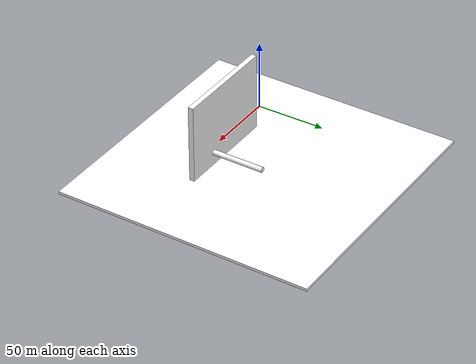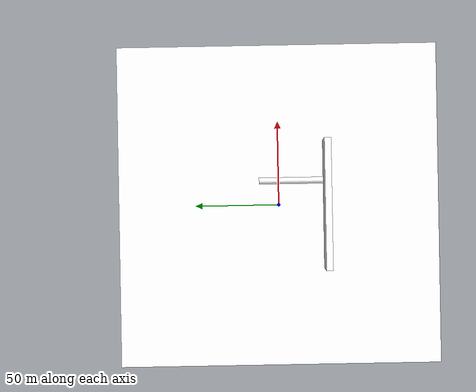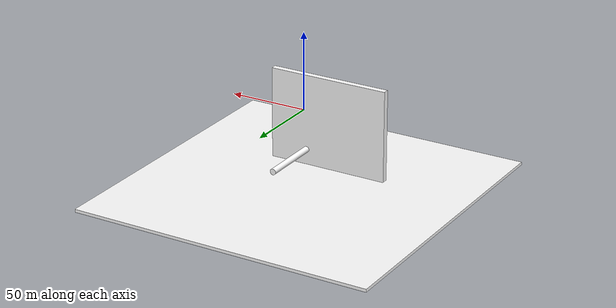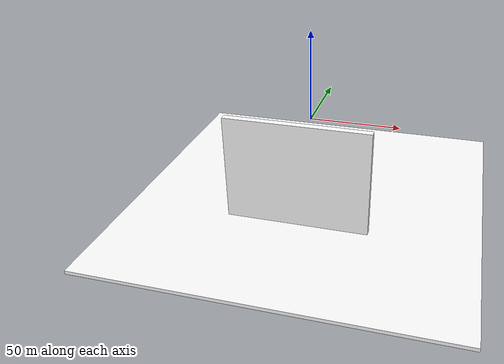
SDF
<?xml version="1.0" ?>
<sdf version="1.9">

<world name="ocean">

    <physics name="physics" type="ode">
        <max_step_size>0.004</max_step_size>
        <real_time_factor>1.0</real_time_factor>
    </physics>

    <plugin
        filename="gz-sim-physics-system"
        name="gz::sim::systems::Physics"/>

    <plugin
        filename="gz-sim-scene-broadcaster-system"
        name="gz::sim::systems::SceneBroadcaster"/>

    <plugin
        filename="gz-sim-user-commands-system"
        name="gz::sim::systems::UserCommands"/>

    <plugin
        filename="gz-sim-sensors-system"
        name="gz::sim::systems::Sensors">
        <render_engine>ogre2</render_engine>
    </plugin>

    <plugin
        filename="gz-sim-buoyancy-system"
        name="gz::sim::systems::Buoyancy">
        <uniform_fluid_density>1000</uniform_fluid_density>
    </plugin>

    <light name="sun" type="directional">
        <cast_shadows>true</cast_shadows>
        <pose>0 0 100 0 0 0</pose>

        <diffuse>1 1 1 1</diffuse>
        <specular>0.2 0.2 0.2 1</specular>

        <direction>-0.5 0.1 -1</direction>
    </light>

    <scene>
        <ambient>0.15 0.28 0.35 1</ambient>
        <background>0.02 0.18 0.28 1</background>
        <fog>
            <color>0.05 0.22 0.3 1</color>
            <type>exp2</type>
            <density>0.018</density>
            <start>2</start>
            <end>45</end>
        </fog>
        <grid>false</grid>
    </scene>

    <include>
        <uri>model://seafloor</uri>
        <pose>0 0 -51 0 0 0</pose>
    </include>

    <!-- Dam wall + pipeline section the swarm inspects (see
         models/dam_structure/). Resolved via GZ_SIM_RESOURCE_PATH, which the
         launch file points at this package's models/ directory. -->
    <include>
        <uri>model://dam_structure</uri>
        <pose>0 0 0 0 0 0</pose>
    </include>

</world>

</sdf>

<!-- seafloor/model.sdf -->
<sdf version="1.9">
  <model name="seafloor">
    <static>true</static>
    <link name="seafloor_link">
      <collision name="seafloor_collision">
        <geometry>
          <box>
            <size>200 200 2</size>
          </box>
        </geometry>
      </collision>
      <visual name="seafloor_visual">
        <geometry>
          <box>
            <size>200 200 2</size>
          </box>
        </geometry>
        <material>
          <ambient>0.6 0.55 0.45 1</ambient>
          <diffuse>1.0 1.0 1.0 1</diffuse>
          <specular>0.1 0.1 0.1 1</specular>
          <pbr>
            <metal>
              <albedo_map>materials/textures/OceanFloor_Albedo.png</albedo_map>
              <normal_map>materials/textures/OceanFloor_Normal.png</normal_map>
              <roughness_map>materials/textures/OceanFloor_Roughness.png</roughness_map>
            </metal>
          </pbr>
        </material>
      </visual>
    </link>
  </model>
</sdf>

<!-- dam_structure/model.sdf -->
<sdf version="1.9">
  <model name="dam_structure">
    <static>true</static>

    <link name="dam_wall">
      <pose>0 -30 -20 0 0 0</pose>
      <inertial>
        <mass>1.0</mass>
        <inertia>
          <ixx>1.0</ixx><iyy>1.0</iyy><izz>1.0</izz>
          <ixy>0</ixy><ixz>0</ixz><iyz>0</iyz>
        </inertia>
      </inertial>
      <collision name="dam_wall_collision">
        <geometry>
          <box>
            <size>80 4 60</size>
          </box>
        </geometry>
      </collision>
      <visual name="dam_wall_visual">
        <geometry>
          <box>
            <size>80 4 60</size>
          </box>
        </geometry>
        <material>
          <ambient>0.55 0.55 0.5 1</ambient>
          <diffuse>1.0 1.0 1.0 1</diffuse>
          <specular>0.15 0.15 0.15 1</specular>
          <pbr>
            <metal>
              <albedo_map>materials/textures/concrete_albedo.png</albedo_map>
              <normal_map>materials/textures/concrete_normal.png</normal_map>
              <roughness_map>materials/textures/concrete_roughness.png</roughness_map>
            </metal>
          </pbr>
        </material>
      </visual>
    </link>

    <!-- Pipeline section running away from the dam face for the AUVs to
         inspect along its length, in addition to the wall face. -->
    <link name="pipe_section">
      <pose>15 -8 -40 -1.5708 0 0</pose>
      <inertial>
        <mass>1.0</mass>
        <inertia>
          <ixx>1.0</ixx><iyy>1.0</iyy><izz>1.0</izz>
          <ixy>0</ixy><ixz>0</ixz><iyz>0</iyz>
        </inertia>
      </inertial>
      <collision name="pipe_collision">
        <geometry>
          <cylinder>
            <radius>2</radius>
            <length>40</length>
          </cylinder>
        </geometry>
      </collision>
      <visual name="pipe_visual">
        <geometry>
          <cylinder>
            <radius>2</radius>
            <length>40</length>
          </cylinder>
        </geometry>
        <material>
          <ambient>0.35 0.35 0.4 1</ambient>
          <diffuse>1.0 1.0 1.0 1</diffuse>
          <specular>0.3 0.3 0.3 1</specular>
          <pbr>
            <metal>
              <albedo_map>materials/textures/rusty_metal_albedo.png</albedo_map>
              <normal_map>materials/textures/rusty_metal_normal.png</normal_map>
              <roughness_map>materials/textures/rusty_metal_roughness.png</roughness_map>
              <metalness_map>materials/textures/rusty_metal_metalness.png</metalness_map>
            </metal>
          </pbr>
        </material>
      </visual>
    </link>
  </model>
</sdf>
